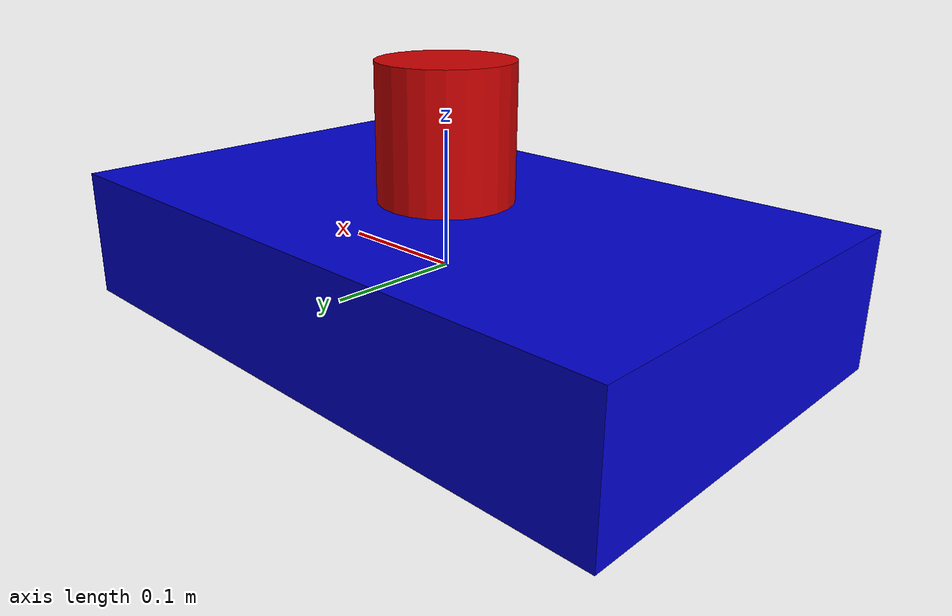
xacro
<?xml version="1.0"?>
<robot xmlns:xacro="http://www.ros.org/wiki/xacro" name="rover">

  <!-- Base body -->
  <link name="base_link">
    <visual>
      <geometry>
        <box size="0.5 0.3 0.1"/>
      </geometry>
      <material name="blue">
        <color rgba="0 0 0.8 1"/>
      </material>
    </visual>
    <collision>
      <geometry>
        <box size="0.5 0.3 0.1"/>
      </geometry>
    </collision>
    <inertial>
      <mass value="5.0"/>
      <inertia ixx="0.1" ixy="0" ixz="0"
                          iyy="0.1" iyz="0"
                                    izz="0.1"/>
    </inertial>
  </link>

  <!-- Sensor tower -->
  <link name="top_link">
    <visual>
      <geometry>
        <cylinder radius="0.05" length="0.1"/>
      </geometry>
      <material name="red">
        <color rgba="0.8 0 0 1"/>
      </material>
    </visual>
    <collision>
      <geometry>
        <cylinder radius="0.05" length="0.1"/>
      </geometry>
    </collision>
    <inertial>
      <mass value="0.5"/>
      <inertia ixx="0.01" ixy="0" ixz="0"
                           iyy="0.01" iyz="0"
                                      izz="0.01"/>
    </inertial>
  </link>

  <joint name="base_to_top" type="fixed">
    <parent link="base_link"/>
    <child link="top_link"/>
    <origin xyz="0 0 0.1"/>
  </joint>

</robot>
